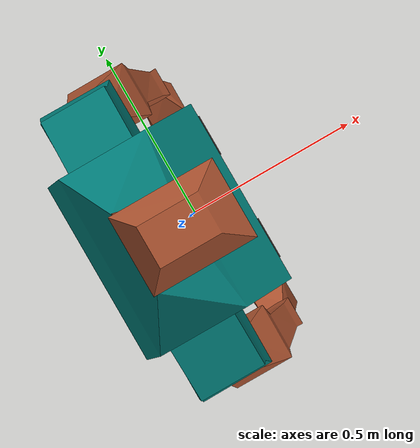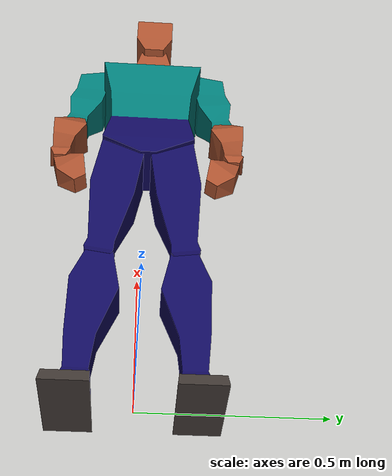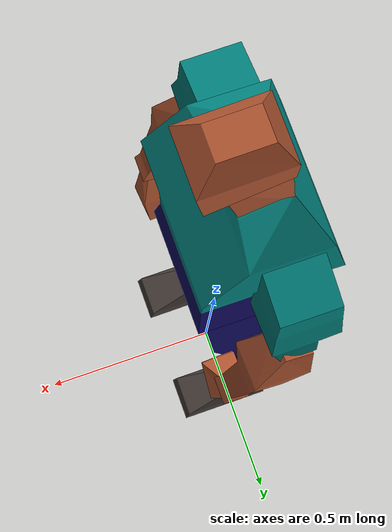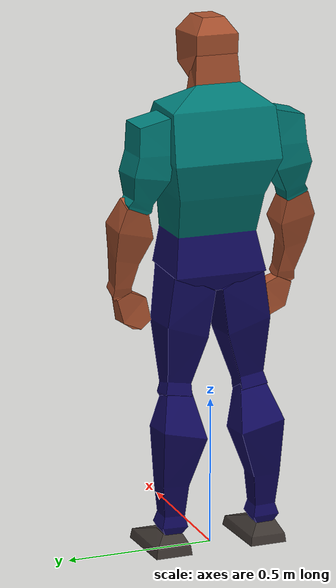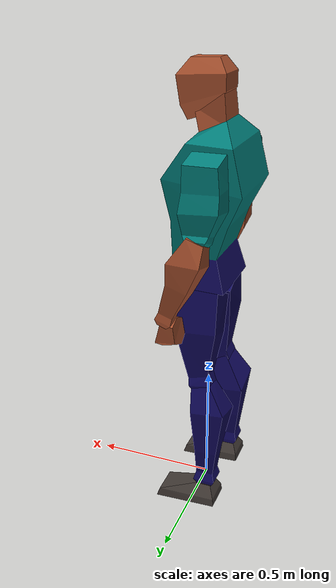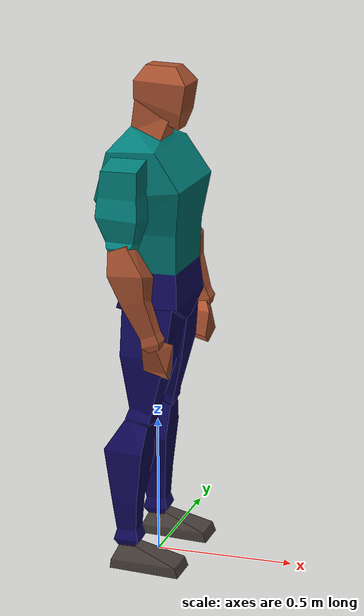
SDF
<?xml version="1.0" ?>
<sdf version="1.7">
  <model name="dienen_human">

    <plugin name="dienen_human_legs" filename="libbeine_legs_plugin.so">
      <left_hip_pitch_joint>left_upper_leg_joint</left_hip_pitch_joint>
      <left_knee_pitch_joint>left_lower_leg_joint</left_knee_pitch_joint>
      <left_ankle_pitch_joint>left_foot_joint</left_ankle_pitch_joint>
      <right_hip_pitch_joint>right_upper_leg_joint</right_hip_pitch_joint>
      <right_knee_pitch_joint>right_lower_leg_joint</right_knee_pitch_joint>
      <right_ankle_pitch_joint>right_foot_joint</right_ankle_pitch_joint>
      <joint_force_strength>1000.0</joint_force_strength>
      <joint_force_smoothness>0.2</joint_force_smoothness>
    </plugin>

    <link name="torso_link">
      <must_be_base_link>true</must_be_base_link>
      <pose>0 0 1.13312 0 0 0</pose>
      <inertial>
        <mass>0.1</mass>
      </inertial>
      <collision name="torso_collision">
        <geometry>
          <mesh>
            <uri>model://dienen_human/meshes/torso.dae</uri>
          </mesh>
        </geometry>
      </collision>
      <visual name="torso_visual">
        <geometry>
          <mesh>
            <uri>model://dienen_human/meshes/torso.dae</uri>
          </mesh>
        </geometry>
      </visual>
    </link>

    <link name="neck_link">
      <pose>0 0 1.55055 0 0 0</pose>
      <inertial>
        <mass>0.1</mass>
      </inertial>
      <collision name="neck_collision">
        <geometry>
          <mesh>
            <uri>model://dienen_human/meshes/neck.dae</uri>
          </mesh>
        </geometry>
      </collision>
      <visual name="neck_visual">
        <geometry>
          <mesh>
            <uri>model://dienen_human/meshes/neck.dae</uri>
          </mesh>
        </geometry>
      </visual>
    </link>

    <link name="head_link">
      <pose>0 0 1.62812 0 0 0</pose>
      <inertial>
        <mass>0.1</mass>
      </inertial>
      <collision name="head_collision">
        <geometry>
          <mesh>
            <uri>model://dienen_human/meshes/head.dae</uri>
          </mesh>
        </geometry>
      </collision>
      <visual name="head_visual">
        <geometry>
          <mesh>
            <uri>model://dienen_human/meshes/head.dae</uri>
          </mesh>
        </geometry>
      </visual>
    </link>

    <link name="left_upper_arm_link">
      <pose>-0.031476 0.168975 1.42403 0 0 0</pose>
      <inertial>
        <mass>0.1</mass>
      </inertial>
      <collision name="left_upper_arm_collision">
        <geometry>
          <mesh>
            <uri>model://dienen_human/meshes/left_upper_arm.dae</uri>
          </mesh>
        </geometry>
      </collision>
      <visual name="left_upper_arm_visual">
        <geometry>
          <mesh>
            <uri>model://dienen_human/meshes/left_upper_arm.dae</uri>
          </mesh>
        </geometry>
      </visual>
    </link>

    <link name="left_lower_arm_link">
      <pose>-0.033132 0.274336 1.20635 0 0 0</pose>
      <inertial>
        <mass>0.1</mass>
      </inertial>
      <collision name="left_lower_arm_collision">
        <geometry>
          <mesh>
            <uri>model://dienen_human/meshes/left_lower_arm.dae</uri>
          </mesh>
        </geometry>
      </collision>
      <visual name="left_lower_arm_visual">
        <geometry>
          <mesh>
            <uri>model://dienen_human/meshes/left_lower_arm.dae</uri>
          </mesh>
        </geometry>
      </visual>
    </link>

    <link name="left_hand_link">
      <pose>0.082831 0.27036 0.857133 0 0 0</pose>
      <inertial>
        <mass>0.1</mass>
      </inertial>
      <collision name="left_hand_collision">
        <geometry>
          <mesh>
            <uri>model://dienen_human/meshes/left_hand.dae</uri>
          </mesh>
        </geometry>
      </collision>
      <visual name="left_hand_visual">
        <geometry>
          <mesh>
            <uri>model://dienen_human/meshes/left_hand.dae</uri>
          </mesh>
        </geometry>
      </visual>
    </link>

    <link name="right_upper_arm_link">
      <pose>-0.031476 -0.168975 1.42403 0 0 0</pose>
      <inertial>
        <mass>0.1</mass>
      </inertial>
      <collision name="right_upper_arm_collision">
        <geometry>
          <mesh>
            <uri>model://dienen_human/meshes/right_upper_arm.dae</uri>
          </mesh>
        </geometry>
      </collision>
      <visual name="right_upper_arm_visual">
        <geometry>
          <mesh>
            <uri>model://dienen_human/meshes/right_upper_arm.dae</uri>
          </mesh>
        </geometry>
      </visual>
    </link>

    <link name="right_lower_arm_link">
      <pose>-0.033132 -0.274336 1.20635 0 0 0</pose>
      <inertial>
        <mass>0.1</mass>
      </inertial>
      <collision name="right_lower_arm_collision">
        <geometry>
          <mesh>
            <uri>model://dienen_human/meshes/right_lower_arm.dae</uri>
          </mesh>
        </geometry>
      </collision>
      <visual name="right_lower_arm_visual">
        <geometry>
          <mesh>
            <uri>model://dienen_human/meshes/right_lower_arm.dae</uri>
          </mesh>
        </geometry>
      </visual>
    </link>

    <link name="right_hand_link">
      <pose>0.082831 -0.27036 0.857133 0 0 0</pose>
      <inertial>
        <mass>0.1</mass>
      </inertial>
      <collision name="right_hand_collision">
        <geometry>
          <mesh>
            <uri>model://dienen_human/meshes/right_hand.dae</uri>
          </mesh>
        </geometry>
      </collision>
      <visual name="right_hand_visual">
        <geometry>
          <mesh>
            <uri>model://dienen_human/meshes/right_hand.dae</uri>
          </mesh>
        </geometry>
      </visual>
    </link>

    <link name="left_upper_leg_link">
      <pose>0.01491 0.071566 0.923397 0 0 0</pose>
      <inertial>
        <mass>2.0</mass>
      </inertial>
      <collision name="left_upper_leg_collision">
        <geometry>
          <mesh>
            <uri>model://dienen_human/meshes/left_upper_leg.dae</uri>
          </mesh>
        </geometry>
      </collision>
      <visual name="left_upper_leg_visual">
        <geometry>
          <mesh>
            <uri>model://dienen_human/meshes/left_upper_leg.dae</uri>
          </mesh>
        </geometry>
      </visual>
    </link>

    <link name="left_lower_leg_link">
      <pose>-0.01491 0.12524 0.547677 0 0 0</pose>
      <inertial>
        <mass>2.0</mass>
      </inertial>
      <collision name="left_lower_leg_collision">
        <geometry>
          <mesh>
            <uri>model://dienen_human/meshes/left_lower_leg.dae</uri>
          </mesh>
        </geometry>
      </collision>
      <visual name="left_lower_leg_visual">
        <geometry>
          <mesh>
            <uri>model://dienen_human/meshes/left_lower_leg.dae</uri>
          </mesh>
        </geometry>
      </visual>
    </link>

    <link name="left_foot_link">
      <pose>-0.049698 0.163011 0.085638 0 0 0</pose>
      <inertial>
        <mass>2.0</mass>
      </inertial>
      <collision name="left_foot_collision">
        <geometry>
          <mesh>
            <uri>model://dienen_human/meshes/left_foot.dae</uri>
          </mesh>
        </geometry>
      </collision>
      <visual name="left_foot_visual">
        <pose>0 0 0 0 0 0</pose>
        <geometry>
          <mesh>
            <uri>model://dienen_human/meshes/left_foot.dae</uri>
          </mesh>
        </geometry>
      </visual>
    </link>

    <link name="right_upper_leg_link">
      <pose>0.01491 -0.071566 0.923397 0 0 0</pose>
      <inertial>
        <mass>2.0</mass>
      </inertial>
      <collision name="right_upper_leg_collision">
        <geometry>
          <mesh>
            <uri>model://dienen_human/meshes/right_upper_leg.dae</uri>
          </mesh>
        </geometry>
      </collision>
      <visual name="right_upper_leg_visual">
        <geometry>
          <mesh>
            <uri>model://dienen_human/meshes/right_upper_leg.dae</uri>
          </mesh>
        </geometry>
      </visual>
    </link>

    <link name="right_lower_leg_link">
      <pose>-0.01491 -0.12524 0.547677 0 0 0</pose>
      <inertial>
        <mass>2.0</mass>
      </inertial>
      <collision name="right_lower_leg_collision">
        <geometry>
          <mesh>
            <uri>model://dienen_human/meshes/right_lower_leg.dae</uri>
          </mesh>
        </geometry>
      </collision>
      <visual name="right_lower_leg_visual">
        <geometry>
          <mesh>
            <uri>model://dienen_human/meshes/right_lower_leg.dae</uri>
          </mesh>
        </geometry>
      </visual>
    </link>

    <link name="right_foot_link">
      <pose>-0.049698 -0.163011 0.085638 0 0 0</pose>
      <inertial>
        <mass>2.0</mass>
      </inertial>
      <collision name="right_foot_collision">
        <geometry>
          <mesh>
            <uri>model://dienen_human/meshes/right_foot.dae</uri>
          </mesh>
        </geometry>
      </collision>
      <visual name="right_foot_visual">
        <pose>0 0 0 0 0 0</pose>
        <geometry>
          <mesh>
            <uri>model://dienen_human/meshes/right_foot.dae</uri>
          </mesh>
        </geometry>
      </visual>
    </link>

    <joint name="neck_joint" type="fixed">
      <parent>torso_link</parent>
      <child>neck_link</child>
      <axis>
        <xyz>0 0 1</xyz>
      </axis>
    </joint>

    <joint name="head_joint" type="fixed">
      <parent>neck_link</parent>
      <child>head_link</child>
      <axis>
        <xyz>0 -1 0</xyz>
      </axis>
    </joint>

    <joint name="left_upper_arm_joint" type="fixed">
      <parent>torso_link</parent>
      <child>left_upper_arm_link</child>
      <axis>
        <xyz>0 -1 0</xyz>
      </axis>
    </joint>

    <joint name="left_lower_arm_joint" type="fixed">
      <parent>left_upper_arm_link</parent>
      <child>left_lower_arm_link</child>
      <axis>
        <xyz>0 -1 0</xyz>
      </axis>
    </joint>

    <joint name="left_hand_joint" type="fixed">
      <parent>left_lower_arm_link</parent>
      <child>left_hand_link</child>
      <axis>
        <xyz>0 -1 0</xyz>
      </axis>
    </joint>

    <joint name="right_upper_arm_joint" type="fixed">
      <parent>torso_link</parent>
      <child>right_upper_arm_link</child>
      <axis>
        <xyz>0 -1 0</xyz>
      </axis>
    </joint>

    <joint name="right_lower_arm_joint" type="fixed">
      <parent>right_upper_arm_link</parent>
      <child>right_lower_arm_link</child>
      <axis>
        <xyz>0 -1 0</xyz>
      </axis>
    </joint>

    <joint name="right_hand_joint" type="fixed">
      <parent>right_lower_arm_link</parent>
      <child>right_hand_link</child>
      <axis>
        <xyz>0 -1 0</xyz>
      </axis>
    </joint>

    <joint name="left_upper_leg_joint" type="revolute">
      <parent>torso_link</parent>
      <child>left_upper_leg_link</child>
      <axis>
        <xyz>0 -1 0</xyz>
        <limit>
          <lower>0.0</lower>
          <upper>0.785398</upper>
        </limit>
      </axis>
    </joint>

    <joint name="left_lower_leg_joint" type="revolute">
      <parent>left_upper_leg_link</parent>
      <child>left_lower_leg_link</child>
      <axis>
        <xyz>0 -1 0</xyz>
        <limit>
          <lower>-1.5708</lower>
          <upper>0.0</upper>
        </limit>
      </axis>
    </joint>

    <joint name="left_foot_joint" type="revolute">
      <parent>left_lower_leg_link</parent>
      <child>left_foot_link</child>
      <axis>
        <xyz>0 -1 0</xyz>
        <limit>
          <lower>0.0</lower>
          <upper>0.785398</upper>
        </limit>
      </axis>
    </joint>

    <joint name="right_upper_leg_joint" type="revolute">
      <parent>torso_link</parent>
      <child>right_upper_leg_link</child>
      <axis>
        <xyz>0 -1 0</xyz>
        <limit>
          <lower>0.0</lower>
          <upper>0.785398</upper>
        </limit>
      </axis>
    </joint>

    <joint name="right_lower_leg_joint" type="revolute">
      <parent>right_upper_leg_link</parent>
      <child>right_lower_leg_link</child>
      <axis>
        <xyz>0 -1 0</xyz>
        <limit>
          <lower>-1.5708</lower>
          <upper>0.0</upper>
        </limit>
      </axis>
    </joint>

    <joint name="right_foot_joint" type="revolute">
      <parent>right_lower_leg_link</parent>
      <child>right_foot_link</child>
      <axis>
        <xyz>0 -1 0</xyz>
        <limit>
          <lower>0.0</lower>
          <upper>0.785398</upper>
        </limit>
      </axis>
    </joint>

  </model>
</sdf>
